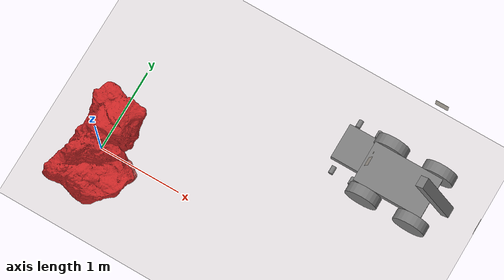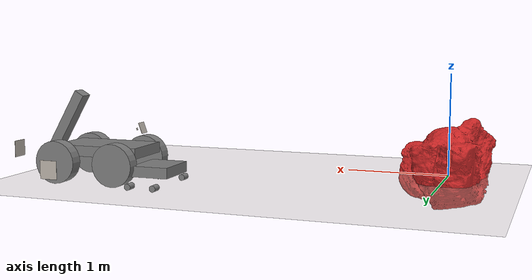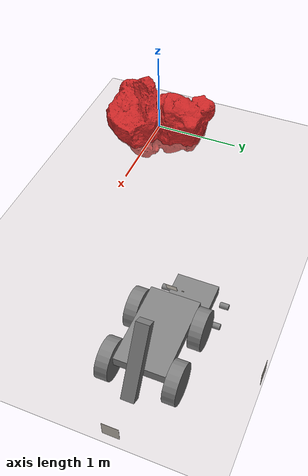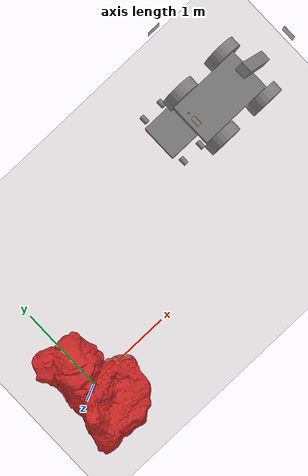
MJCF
<mujoco model="scene">
  <option integrator="implicit" />

  <visual>
    <headlight diffuse="0.6 0.6 0.6" ambient="0.1 0.1 0.1" specular="0 0 0"/>
    <rgba haze="0.15 0.25 0.35 1"/>
    <global azimuth="120" elevation="-20"/>
  </visual>

  <asset>
    <texture type="skybox" builtin="gradient" rgb1="0.3 0.5 0.7" rgb2="0 0 0" width="512" height="3072" />

    <texture type="2d" name="lunar_surface" file="./lunar_texture.png" />
    <material name="lunar_surface" texture="lunar_surface" texuniform="true" texrepeat="0.25 0.25"/>
    <hfield name="surface" size="4.05 2.285 0.3 0.1" file="height.png"/>

    <mesh file="./rock_round.stl" />
    <mesh file="./rock_rough.stl" />

    <mesh name="rock1" file="./67016-2_SFM_Web-Resolution-Model_Coordinate-Registered/67016-2_SFM_Web-Resolution-Model_Coordinate-Registered.obj" scale="15 15 15" />
    <texture type="2d" name="rock1" file="./67016-2_SFM_Web-Resolution-Model_Coordinate-Registered/67016-2_SFM_Web-Resolution-Model_Coordinate-Registered.png" />
    <material name="rock1" texture="rock1" />

    <texture type="2d" file="./tag36_11_00126.png" />
    <material name="tag126" texture="tag36_11_00126" />
    <texture type="2d" file="./tag36_11_00173.png" />
    <material name="tag173" texture="tag36_11_00173" />
    <texture type="2d" file="./tag36_11_00301.png" />
    <material name="tag301" texture="tag36_11_00301" />
    <texture type="2d" file="./tag36_11_00421.png" />
    <material name="tag421" texture="tag36_11_00421" />
    <texture type="2d" file="./tag36_11_00476.png" />
    <material name="tag476" texture="tag36_11_00476" />
    <texture type="2d" file="./tag36_11_00482.png" />
    <material name="tag482" texture="tag36_11_00482" />
  </asset>

  <default>
    <default class="wheel">
        <geom type="cylinder" size="0.2 0.0625" friction="1 0.005 0.0001" />
    </default>
    <default class="mini wheel">
        <geom type="cylinder" size="0.03 0.045" friction="1 0.005 0.0001" />
    </default>
  </default>

  <worldbody>
    <light pos="0 0 1.5" dir="0 0 -1" directional="true"/>
    <geom type="plane" size="4.05 2.285 0.1" material="lunar_surface" name="ground" />
    <body pos="0 0 0.1" euler="90 0 -45">
      <geom type="mesh" mesh="rock1" material="rock1"/>
    </body>

    <site type="box" size="0.0805555 0.0805555 .001" pos="3.05 2.285 0.25" material="tag301" euler="90 0 0"/>
    <site type="box" size="0.0805555 0.0805555 .001" pos="4.05 1.285 0.25" material="tag482" euler="90 -90 0"/>

    <body pos="3.1 1.285 0.3" name="robot">
      <freejoint />
      <geom type="box" size="0.425 0.25 0.05" pos="-0.05 0 0"/>

      <site type="box" size="0.0111 0.0111 0.001" pos="-0.42 0.09 0.21" euler="0 -70 -90" material="tag173"/>
      <site type="box" size="0.05335 0.05335 0.001" pos="-0.42 -0.02 0.21" euler="0 -70 -90" material="tag126"/>

      <camera name="back" fovy="58" resolution="424 240" pos="-0.44 0.02 0.33" euler="0 50 90" />

      <body pos="0.3 0.32 -0.1" euler="-90 0 0">
        <geom class="wheel" />
        <joint name="left front" type="hinge" />
      </body>
      <body pos="-0.3 0.32 -0.1" euler="-90 0 0">
        <geom class="wheel" />
        <joint name="left back" type="hinge" />
      </body>
      <body pos="0.3 -0.32 -0.1" euler="-90 0 0">
        <geom class="wheel" />
        <joint name="right front" type="hinge" />
      </body>
      <body pos="-0.3 -0.32 -0.1" euler="-90 0 0">
        <geom class="wheel" />
        <joint name="right back" type="hinge" />
      </body>

      <body pos="0.4 0 0.2" euler="0 -120 0">
        <geom type="box" size="0.375 0.065 0.05" />
        <joint name="excavation" type="slide" axis="1 0 0" range="-0.2 0" damping="100" />

        <camera name="front" fovy="58" resolution="424 240" pos="0.3 0 -0.15" euler="0 52 90" />
      </body>
    </body>

    <body pos="2.4 1.385 0.15" euler="0 0 180" name="mini robot">
      <freejoint />
      <geom type="box" size="0.1775 0.214 0.05" pos="-0.05 0 0"/>

      <camera name="mini back" fovy="58" resolution="424 240" pos="-0.155 0 0.36" euler="180 90 90" />
      <camera name="mini front" fovy="58" resolution="424 240" pos="0.189 0.162 0.37" euler="0 -60 90" />

      <body pos="0.05 0.305 -0.12" euler="-90 0 0">
        <geom class="mini wheel" />
        <joint name="mini left front" type="hinge" />
      </body>
      <body pos="-0.2 0.305 -0.12" euler="-90 0 0">
        <geom class="mini wheel" />
        <joint name="mini left back" type="hinge" />
      </body>
      <body pos="0.05 -0.305 -0.12" euler="-90 0 0">
        <geom class="mini wheel" />
        <joint name="mini right front" type="hinge" />
      </body>
      <body pos="-0.2 -0.305 -0.12" euler="-90 0 0">
        <geom class="mini wheel" />
        <joint name="mini right back" type="hinge" />
      </body>
    </body>
  </worldbody>

  <tendon>
    <fixed name="left">
      <joint joint="left front" coef="1"/>
      <joint joint="left back" coef="1"/>
    </fixed>
    <fixed name="right">
      <joint joint="right front" coef="1"/>
      <joint joint="right back" coef="1"/>
    </fixed>

    <fixed name="mini left">
      <joint joint="mini left front" coef="1"/>
      <joint joint="mini left back" coef="1"/>
    </fixed>
    <fixed name="mini right">
      <joint joint="mini right front" coef="1"/>
      <joint joint="mini right back" coef="1"/>
    </fixed>
  </tendon>

  <actuator>
    <intvelocity name="excavation" joint="excavation" kp="10000" kv="100" ctrlrange="-5 5" actrange="-0.16 0" />
    <velocity name="left" tendon="left" kv="100" ctrlrange="-5 5" />
    <velocity name="right" tendon="right" kv="100" ctrlrange="-5 5" />
    <velocity name="mini left" tendon="mini left" kv="2" gear=".2" ctrlrange="-5 5" />
    <velocity name="mini right" tendon="mini right" kv="2" gear=".2" ctrlrange="-5 5" />
  </actuator>

  <sensor>
    <jointpos name="exc_pos" joint="excavation" />
    <jointactuatorfrc name="exc_effort" joint="excavation" />
    <framepos name="odom_pos" objtype="xbody" objname="robot" reftype="geom" refname="ground" />
    <framequat name="odom_rot" objtype="xbody" objname="robot" reftype="geom" refname="ground" />
    <framepos name="mini_odom_pos" objtype="xbody" objname="mini robot" reftype="geom" refname="ground" />
    <framequat name="mini_odom_rot" objtype="xbody" objname="mini robot" reftype="geom" refname="ground" />
  </sensor>
</mujoco>
